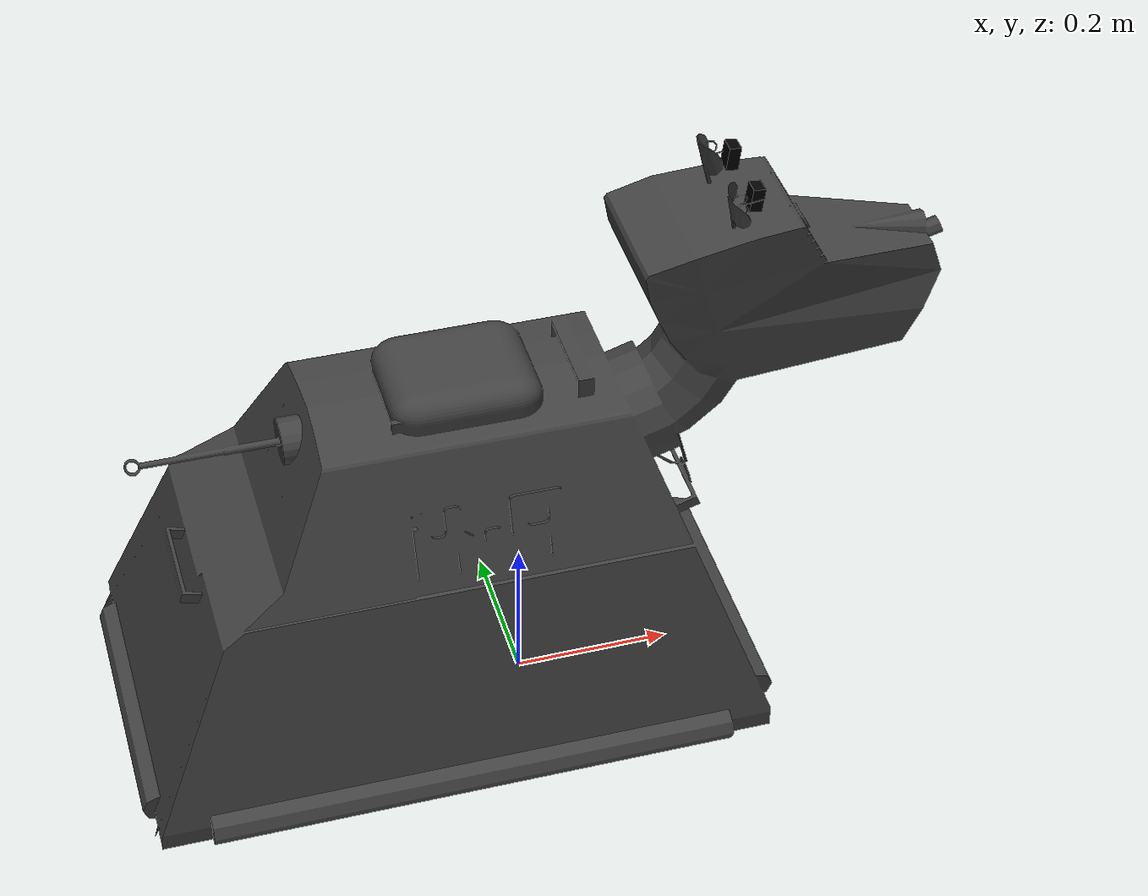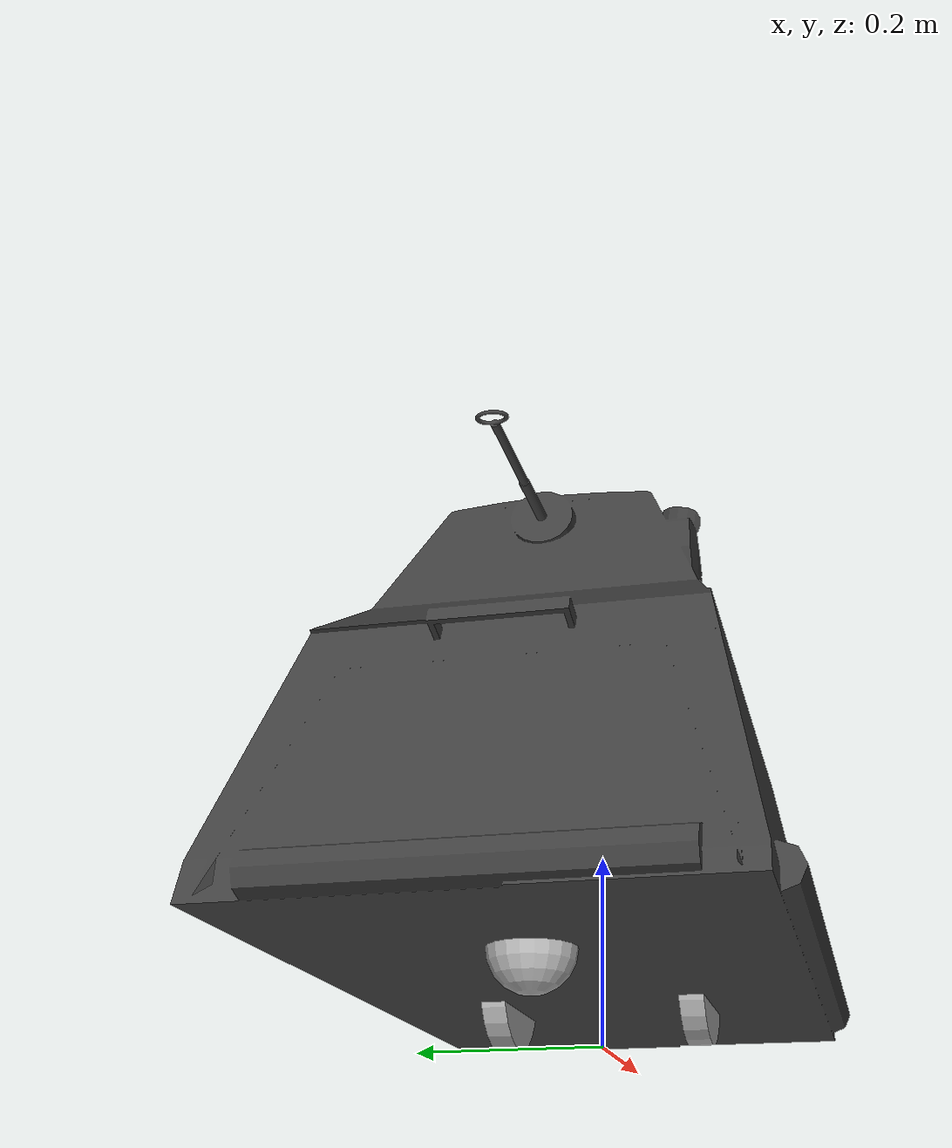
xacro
<?xml version="1.0"?>
<robot name="k9_robot" xmlns:xacro="http://ros.org/wiki/xacro">
  <xacro:arg name="description_share" default="$(find k9_description)"/>
  <xacro:arg name="controllers_file" default="$(find k9_description)/config/controllers.yaml"/>
  <xacro:arg name="sim" default="true"/>

  <!-- To generate SDF for Gazebo Sim                        -->
  <!-- Source the built workspace, then run gen.sh.          -->
  <!-- Exports are generated outside the source tree.        -->

  <!-- Materials                                             -->
  <material name="K9_grey">
    <color rgba="0.25 0.25 0.25 1.0"/>
  </material>

  <material name="wheel_grey">
    <color rgba="0.7 0.7 0.7 1.0"/>
  </material>

  <material name="k9_ear_emissive">
  <color rgba="0 0 0 1"/>
  </material>

  <material name="k9_beam_material">
    <color rgba="0 1 0 1"/>
  </material>

  <!-- Constants                                             -->
  <xacro:property name="wheel_radius" value="0.0694"/>
  <xacro:property name="wheel_width"  value="0.025"/>
  <xacro:property name="track"        value="0.2022"/>

  <!-- Drive transmission and motor model                    -->
  <!-- MY6812 brushed motors, supplied at 27.68 V.           -->
  <!-- 16-tooth motor pulley to 88-tooth wheel pulley.       -->
  <!-- Motor constants and rotor inertia remain provisional  -->
  <!-- until measured on K9's actual motors.                 -->
  <xacro:property name="motor_pulley_teeth" value="16.0"/>
  <xacro:property name="wheel_pulley_teeth" value="88.0"/>
  <xacro:property name="drive_reduction"
                  value="${wheel_pulley_teeth / motor_pulley_teeth}"/>

  <xacro:property name="motor_supply_voltage" value="27.68"/>
  <xacro:property name="motor_back_emf_constant" value="0.082"/>
  <xacro:property name="motor_torque_constant" value="0.082"/>
  <xacro:property name="motor_current_limit" value="15.0"/>
  <xacro:property name="belt_efficiency" value="0.90"/>

  <!-- Theoretical no-load speeds: approximately 337.6 rad/s
       at the motor and 61.4 rad/s at the wheel. -->
  <xacro:property name="motor_no_load_speed"
                  value="${motor_supply_voltage / motor_back_emf_constant}"/>
  <xacro:property name="wheel_max_speed"
                  value="${motor_no_load_speed / drive_reduction}"/>

  <!-- Short-duration wheel effort at the RoboClaw's 15 A
       per-channel current limit: approximately 6.09 N m. -->
  <xacro:property name="wheel_max_effort"
                  value="${motor_torque_constant
                           * motor_current_limit
                           * drive_reduction
                           * belt_efficiency}"/>

  <!-- Estimated motor inertia reflected to the wheel shaft:
       0.00003 * 5.5^2 = 0.0009075 kg m^2. -->
  <xacro:property name="motor_rotor_inertia" value="0.00003"/>
  <xacro:property name="reflected_motor_inertia"
                  value="${motor_rotor_inertia
                           * drive_reduction
                           * drive_reduction}"/>

  <!-- Ball caster -->
  <xacro:property name="ball_radius"  value="0.04"/>
  <xacro:property name="ball_x"       value="-0.30"/>

  <!-- Helper macros                                         -->
  <xacro:macro name="tiny_inertial" params="m">
    <inertial>
      <origin xyz="0 0 0"/>
      <mass value="${m}"/>
      <inertia
        ixx="1e-4" ixy="0" ixz="0"
        iyy="1e-4" iyz="0"
        izz="1e-4"/>
    </inertial>
  </xacro:macro>

  <!-- Uniform-density approximations; dimensions are in metres. -->
  <xacro:macro name="box_inertial" params="m x y z">
    <inertial>
      <mass value="${m}"/>
      <inertia ixx="${m*(y*y+z*z)/12}" iyy="${m*(x*x+z*z)/12}"
               izz="${m*(x*x+y*y)/12}" ixy="0" ixz="0" iyz="0"/>
    </inertial>
  </xacro:macro>

  <!-- IMU (Gazebo Sim) helper macro                          -->
  <xacro:macro name="k9_add_imu" params="
    parent_link
    imu_link:=imu_link
    xyz:='0 0 0'
    rpy:='0 0 0'
    update_rate:=200
    accel_noise:=0.02
    gyro_noise:=0.002
    accel_bias:=0.0
    gyro_bias:=0.0
  ">

    <!-- A tiny link to carry the IMU sensor -->
    <link name="${imu_link}">
      <inertial>
        <origin xyz="0 0 0" rpy="0 0 0"/>
        <mass value="0.02"/>
        <inertia ixx="1e-6" ixy="0" ixz="0" iyy="1e-6" iyz="0" izz="1e-6"/>
      </inertial>
    </link>

    <joint name="${imu_link}_joint" type="fixed">
      <parent link="${parent_link}"/>
      <child link="${imu_link}"/>
      <origin xyz="${xyz}" rpy="${rpy}"/>
    </joint>

    <!-- Gazebo Sim sensor definition -->
    <gazebo reference="${imu_link}">
      <sensor name="${imu_link}_sensor" type="imu">
        <topic>/k9/imu</topic>
        <gz_frame_id>${imu_link}</gz_frame_id>
        <always_on>true</always_on>
        <visualize>false</visualize>
        <update_rate>${update_rate}</update_rate>

        <!-- Noise model (tune these to feel like your BNO080) -->
        <imu>
          <angular_velocity>
            <x>
              <noise type="gaussian">
                <mean>0.0</mean>
                <stddev>${gyro_noise}</stddev>
                <bias_mean>${gyro_bias}</bias_mean>
                <bias_stddev>0.0</bias_stddev>
              </noise>
            </x>
            <y>
              <noise type="gaussian">
                <mean>0.0</mean>
                <stddev>${gyro_noise}</stddev>
                <bias_mean>${gyro_bias}</bias_mean>
                <bias_stddev>0.0</bias_stddev>
              </noise>
            </y>
            <z>
              <noise type="gaussian">
                <mean>0.0</mean>
                <stddev>${gyro_noise}</stddev>
                <bias_mean>${gyro_bias}</bias_mean>
                <bias_stddev>0.0</bias_stddev>
              </noise>
            </z>
          </angular_velocity>

          <linear_acceleration>
            <x>
              <noise type="gaussian">
                <mean>0.0</mean>
                <stddev>${accel_noise}</stddev>
                <bias_mean>${accel_bias}</bias_mean>
                <bias_stddev>0.0</bias_stddev>
              </noise>
            </x>
            <y>
              <noise type="gaussian">
                <mean>0.0</mean>
                <stddev>${accel_noise}</stddev>
                <bias_mean>${accel_bias}</bias_mean>
                <bias_stddev>0.0</bias_stddev>
              </noise>
            </y>
            <z>
              <noise type="gaussian">
                <mean>0.0</mean>
                <stddev>${accel_noise}</stddev>
                <bias_mean>${accel_bias}</bias_mean>
                <bias_stddev>0.0</bias_stddev>
              </noise>
            </z>
          </linear_acceleration>
        </imu>

      </sensor>
    </gazebo>

  </xacro:macro>

  <!-- OAK-D Lite-ish RGBD -> PointCloud (Gazebo Sim)         -->
  <xacro:macro name="k9_add_oakd_pointcloud" params="
    parent_link
    oak_link:=oakd_link
    xyz:='0 0 0'
    rpy:='0 0 0'
    width:=640
    height:=400
    update_rate:=30
    hfov:=1.3962634
    near:=0.20
    far:=8.0
    depth_noise_stddev:=0.01
    gz_topic:='/oak'
    frame_id:='oakd_link'">

    <!-- A tiny link to carry the camera sensor -->
    <link name="${oak_link}">
      <inertial>
        <origin xyz="0 0 0" rpy="0 0 0"/>
        <mass value="0.05"/>
        <inertia ixx="1e-5" ixy="0" ixz="0" iyy="1e-5" iyz="0" izz="1e-5"/>
      </inertial>
    </link>

    <joint name="${oak_link}_joint" type="fixed">
      <parent link="${parent_link}"/>
      <child link="${oak_link}"/>
      <origin xyz="${xyz}" rpy="${rpy}"/>
    </joint>

    <!-- Depth frame used by Gazebo / depthimage_to_laserscan -->
    <link name="oak_rgb_camera_optical_frame"/>
    <joint name="oak_rgb_camera_optical_frame_joint" type="fixed">
      <parent link="${oak_link}"/>
      <child link="oak_rgb_camera_optical_frame"/>
      <origin xyz="0 0 0" rpy="${-pi/2} 0 ${-pi/2}"/>
    </joint>

    <gazebo reference="${oak_link}">
      <sensor name="${oak_link}_rgbd" type="rgbd_camera">
        <always_on>true</always_on>
        <visualize>false</visualize>
        <update_rate>${update_rate}</update_rate>
        <topic>${gz_topic}</topic>
        <gz_frame_id>${frame_id}</gz_frame_id>
        <camera>
          <horizontal_fov>${hfov}</horizontal_fov>
          <image>
            <width>${width}</width>
            <height>${height}</height>
          </image>
          <clip>
            <near>${near}</near>
            <far>${far}</far>
          </clip>
          <noise>
            <type>gaussian</type>
            <mean>0.0</mean>
            <stddev>0.003</stddev>
          </noise>
        </camera>
      </sensor>
    </gazebo>

  </xacro:macro>

  <!-- Frames                                                -->
  <link name="base_footprint"/>

  <!-- Base / chassis                                        -->
  <link name="base_link">

    <!-- Visual -->
    <visual>
      <origin xyz="-0.5 1.905 ${-wheel_radius}" rpy="0 0 ${pi}"/>
      <geometry>
        <mesh filename="file://$(arg description_share)/urdf/k9.stl"
              scale="0.01 0.01 0.01"/>
      </geometry>
      <material name="K9_grey"/>
    </visual>

    <collision name="body_collision">
      <origin xyz="-0.1175 0 ${0.29-wheel_radius}"/>
      <geometry><box size="0.815 0.49 0.50"/></geometry>
    </collision>
    <collision name="head_collision">
      <origin xyz="0.329 0 ${0.6275-wheel_radius}"/>
      <geometry><box size="0.404 0.174 0.265"/></geometry>
    </collision>

    <!-- Inertia: main shell + structure -->
    <!-- CHANGED: lower + slightly rear-shift COM, and increase pitch inertia (iyy) -->
    <inertial>
      <!-- was: -0.02 0 0.20 -->
      <origin xyz="-0.06 0 0.16"/>
      <mass value="19.0"/>
      <inertia
        ixx="0.80"
        ixy="0" ixz="0"
        iyy="2.40"
        iyz="0"
        izz="1.70"/>
    </inertial>

  </link>

  <joint name="base_joint" type="fixed">
    <parent link="base_footprint"/>
    <child link="base_link"/>
    <origin xyz="0 0 ${wheel_radius}"/>
  </joint>

  <!-- Battery (low + central)                               -->
  <link name="battery_link">
    <collision>
      <geometry>
        <box size="0.25 0.20 0.25"/>
      </geometry>
    </collision>
    <xacro:box_inertial m="5.0" x="0.25" y="0.20" z="0.25"/>
  </link>

  <joint name="battery_joint" type="fixed">
    <parent link="base_link"/>
    <child link="battery_link"/>
    <origin xyz="0 0 0.18"/>
  </joint>

  <!-- Motors                                                -->
  <link name="motors_link">
    <collision>
      <geometry>
        <box size="0.20 0.20 0.10"/>
      </geometry>
    </collision>
    <xacro:box_inertial m="3.0" x="0.20" y="0.20" z="0.10"/>
  </link>

  <joint name="motors_joint" type="fixed">
    <parent link="base_link"/>
    <child link="motors_link"/>
    <origin xyz="0 0 0.10"/>
  </joint>

  <!-- Drive wheels                                          -->
  <xacro:macro name="drive_wheel" params="name y">
    <link name="${name}_link">
      <visual>
        <origin rpy="${pi/2} 0 0"/>
        <geometry>
          <cylinder radius="${wheel_radius}" length="${wheel_width}"/>
        </geometry>
        <material name="wheel_grey"/>
      </visual>
      <collision>
        <origin rpy="${pi/2} 0 0"/>
        <geometry>
          <cylinder radius="${wheel_radius}" length="${wheel_width}"/>
        </geometry>
      </collision>
      <!-- Solid 1 kg cylinder plus motor inertia reflected through
           the 5.5:1 belt reduction; axle is Y in the link frame. -->
      <inertial>
        <mass value="1.0"/>
        <inertia
          ixx="${(3*wheel_radius*wheel_radius+wheel_width*wheel_width)/12}" ixy="0" ixz="0"
          iyy="${wheel_radius*wheel_radius/2 + reflected_motor_inertia}" iyz="0"
          izz="${(3*wheel_radius*wheel_radius+wheel_width*wheel_width)/12}"/>
      </inertial>
    </link>

    <gazebo reference="${name}_link">
      <mu1>1.1</mu1>
      <mu2>0.9</mu2>
    </gazebo>

    <joint name="${name}_joint" type="continuous">
      <parent link="base_link"/>
      <child link="${name}_link"/>
      <origin xyz="0 ${y} 0"/>
      <axis xyz="0 1 0"/>
      <!-- Wheel-side limits derived from the motor, 27.68 V supply,
           5.5:1 belt reduction and 15 A controller current limit. -->
      <limit effort="${wheel_max_effort}"
             velocity="${wheel_max_speed}"/>
      <dynamics damping="0.02" friction="0.04"/>
    </joint>
  </xacro:macro>

  <xacro:drive_wheel name="drivewhl_l" y="${ track/2}"/>
  <xacro:drive_wheel name="drivewhl_r" y="${-track/2}"/>

  <!-- Ball caster (4 cm sphere)                              -->
  <link name="ball_caster_link">
    <visual>
      <geometry>
        <sphere radius="${ball_radius}"/>
      </geometry>
      <material name="wheel_grey"/>
    </visual>
    <collision>
      <geometry>
        <sphere radius="${ball_radius}"/>
      </geometry>
    </collision>
    <inertial>
      <mass value="0.5"/>
      <inertia ixx="${2*0.5*ball_radius*ball_radius/5}"
               iyy="${2*0.5*ball_radius*ball_radius/5}"
               izz="${2*0.5*ball_radius*ball_radius/5}" ixy="0" ixz="0" iyz="0"/>
    </inertial>
  </link>

  <gazebo reference="ball_caster_link">
    <mu1>0.2</mu1>
    <mu2>0.2</mu2>
  </gazebo>

  <gazebo reference="ball_caster_joint">
    <preserveFixedJoint>true</preserveFixedJoint>
  </gazebo>
  <joint name="ball_caster_joint" type="fixed">
    <parent link="base_link"/>
    <child link="ball_caster_link"/>
    <origin xyz="${ball_x} 0 ${ball_radius - wheel_radius}"/>
  </joint>

  <!-- Sensors                                               -->
  <!-- Back-panel lidar intentionally sees the head in its forward sector. -->

  <link name="base_laser"><xacro:tiny_inertial m="0.05"/></link>
  <joint name="base_laser_joint" type="fixed">
    <parent link="base_link"/>
    <child link="base_laser"/>
    <origin xyz="-0.112 0 0.53" rpy ="0 0 0"/>
  </joint>
  <gazebo reference="base_laser">
    <sensor name="ld06_lidar" type="gpu_lidar">
      <update_rate>10</update_rate>
      <always_on>true</always_on>
      <topic>/ld06/scan</topic>
      <pose>0 0 0 0 0 0</pose>
      <visualize>true</visualize>
      <gz_frame_id>base_laser</gz_frame_id>
      <frame_id>base_laser</frame_id>
      <lidar>
        <scan>
          <horizontal>
            <samples>360</samples>
            <min_angle>-3.14159</min_angle>
            <max_angle>3.14159</max_angle>
          </horizontal>
        </scan>
        <range>
          <min>0.02</min>
          <max>12.0</max>
        </range>
      </lidar>
    </sensor>
  </gazebo>

  <link name="eyecam_link"><xacro:tiny_inertial m="0.05"/></link>
  <joint name="eyecam_joint" type="fixed">
    <parent link="base_link"/>
    <child link="eyecam_link"/>
    <origin xyz="0.366 0 0.67"/>
  </joint>

  <link name="3dcam_link"><xacro:tiny_inertial m="0.10"/></link>
  <joint name="3dcam_joint" type="fixed">
    <parent link="base_link"/>
    <child link="3dcam_link"/>
    <origin xyz="0.206 0 0.255"/>
  </joint>

  <!-- ******************** LEFT EAR ****************************** -->

  <link name="l_ear_link">
    <!-- Visual (for Gazebo visualisation) -->
    <visual name="l_ear_visual">
      <origin xyz="0 0 0" rpy="0 0 0"/>
      <geometry>
        <box size="0.015 0.02 0.03"/>
      </geometry>
      <material name="k9_ear_emissive">
        <ambient>0 0 0 1</ambient>
        <diffuse>0 0 0 1</diffuse>
        <emissive>0 0 0 1</emissive> <!-- will be driven by Gazebo -->
      </material>
    </visual>
    <xacro:tiny_inertial m="0.05"/>
  </link>

  <!-- Sensor mount is 30 degrees below the rotating ear; servo axis tilts 7 degrees. -->
  <link name="l_ear_sensor_link"/>
  <joint name="l_ear_sensor_joint" type="fixed">
    <parent link="l_ear_link"/>
    <child link="l_ear_sensor_link"/>
    <origin xyz="0.0075 0 0" rpy="0 ${pi/6} 0"/>
  </joint>

  <gazebo reference="l_ear_link">
    <sensor name="l_ear_tof" type="gpu_lidar">
      <pose>0.0075 0 0 0 ${pi/6} 0</pose>
      <update_rate>30</update_rate>
      <always_on>true</always_on>
      <visualize>true</visualize>
      <topic>/l_ear/scan</topic>
      <gz_frame_id>l_ear_sensor_link</gz_frame_id>
      <frame_id>l_ear_sensor_link</frame_id>
      <lidar>
        <scan>
          <horizontal>
            <samples>3</samples>
            <resolution>1</resolution>
            <min_angle>-0.005</min_angle>
            <max_angle>0.005</max_angle>
          </horizontal>
        </scan>
        <range>
          <min>0.02</min>
          <max>2.0</max>
          <resolution>0.001</resolution>
        </range>
      </lidar>
    </sensor>
  </gazebo>

  <joint name="l_ear_joint" type="revolute">
    <parent link="base_link"/>
    <child link="l_ear_link"/>
    <origin xyz="0.27 0.0425 0.67" rpy="0 ${7*pi/180} 0"/>
    <axis xyz="0 0 1"/>
    <limit lower="-0.2" upper="0.6" effort="2.0" velocity="10"/>
    <dynamics friction="0.01" damping="0.01"/>
  </joint>

  <!-- ******************** RIGHT EAR ****************************** -->

  <link name="r_ear_link">

    <visual name="r_ear_visual">
      <origin xyz="0 0 0" rpy="0 0 0"/>
      <geometry>
        <box size="0.015 0.02 0.03"/>
      </geometry>
      <material name="k9_ear_emissive">
        <ambient>0 0 0 1</ambient>
        <diffuse>0 0 0 1</diffuse>
        <emissive>0 0 0 1</emissive>
      </material>
    </visual>
    <xacro:tiny_inertial m="0.05"/>
  </link>

  <!-- Sensor mount is 30 degrees below the rotating ear; servo axis tilts 7 degrees. -->
  <link name="r_ear_sensor_link"/>
  <joint name="r_ear_sensor_joint" type="fixed">
    <parent link="r_ear_link"/>
    <child link="r_ear_sensor_link"/>
    <origin xyz="0.0075 0 0" rpy="0 ${pi/6} 0"/>
  </joint>

  <gazebo reference="r_ear_link">
    <sensor name="r_ear_tof" type="gpu_lidar">
      <pose>0.0075 0 0 0 ${pi/6} 0</pose>
      <update_rate>30</update_rate>
      <always_on>true</always_on>
      <visualize>true</visualize>
      <topic>/r_ear/scan</topic>
      <gz_frame_id>r_ear_sensor_link</gz_frame_id>
      <frame_id>r_ear_sensor_link</frame_id>
      <lidar>
        <scan>
          <horizontal>
            <samples>3</samples>
            <resolution>1</resolution>
            <min_angle>-0.005</min_angle>
            <max_angle>0.005</max_angle>
          </horizontal>
        </scan>
        <range>
          <min>0.02</min>
          <max>2.0</max>
          <resolution>0.001</resolution>
        </range>
      </lidar>
    </sensor>
  </gazebo>

  <joint name="r_ear_joint" type="revolute">
    <parent link="base_link"/>
    <child link="r_ear_link"/>
    <origin xyz="0.27 -0.0425 0.67" rpy="0 ${7*pi/180} 0"/>
    <axis xyz="0 0 1"/>
    <limit lower="-0.6" upper="0.2" effort="2.0" velocity="10"/>
    <dynamics friction="0.01" damping="0.01"/>
  </joint>

  <!-- Wheel and ear joint control (gz-sim, Jazzy)            -->

  <xacro:if value="$(arg sim)">
    <ros2_control name="K9SimSystem" type="system">
      <hardware>
        <plugin>gz_ros2_control/GazeboSimSystem</plugin>
      </hardware>

      <joint name="drivewhl_l_joint">
        <command_interface name="velocity">
          <param name="min">${-wheel_max_speed}</param>
          <param name="max">${wheel_max_speed}</param>
        </command_interface>
        <state_interface name="position"/>
        <state_interface name="velocity"/>
        <state_interface name="effort"/>
      </joint>
      <joint name="drivewhl_r_joint">
        <command_interface name="velocity">
          <param name="min">${-wheel_max_speed}</param>
          <param name="max">${wheel_max_speed}</param>
        </command_interface>
        <state_interface name="position"/>
        <state_interface name="velocity"/>
        <state_interface name="effort"/>
      </joint>
      <joint name="l_ear_joint">
        <command_interface name="position"/>
        <state_interface name="position"/>
        <state_interface name="velocity"/>
      </joint>

      <joint name="r_ear_joint">
        <command_interface name="position"/>
        <state_interface name="position"/>
        <state_interface name="velocity"/>
      </joint>
    </ros2_control>
  </xacro:if>

  <!-- IMU (gz-sim, Jazzy)                                   -->

  <xacro:k9_add_imu
    parent_link="base_link"
    imu_link="imu_link"
    xyz="0 0 0.16"
    rpy="0 0 0"
    update_rate="200"
    accel_noise="0.01"
    gyro_noise="0.001"/>

  <xacro:k9_add_oakd_pointcloud
    parent_link="base_link"
    oak_link="oakd_link"
    xyz="0.26 0 0.255"
    rpy="0 0 0"
    gz_topic="/oak"
    frame_id="oak_rgb_camera_optical_frame"/>

  <!-- One controller manager owns wheel and ear command interfaces. -->
  <xacro:if value="$(arg sim)">
    <gazebo>
      <plugin name="gz_ros2_control::GazeboSimROS2ControlPlugin"
              filename="libgz_ros2_control-system.so">
        <parameters>$(arg controllers_file)</parameters>
      </plugin>
    </gazebo>
  </xacro:if>
</robot>
